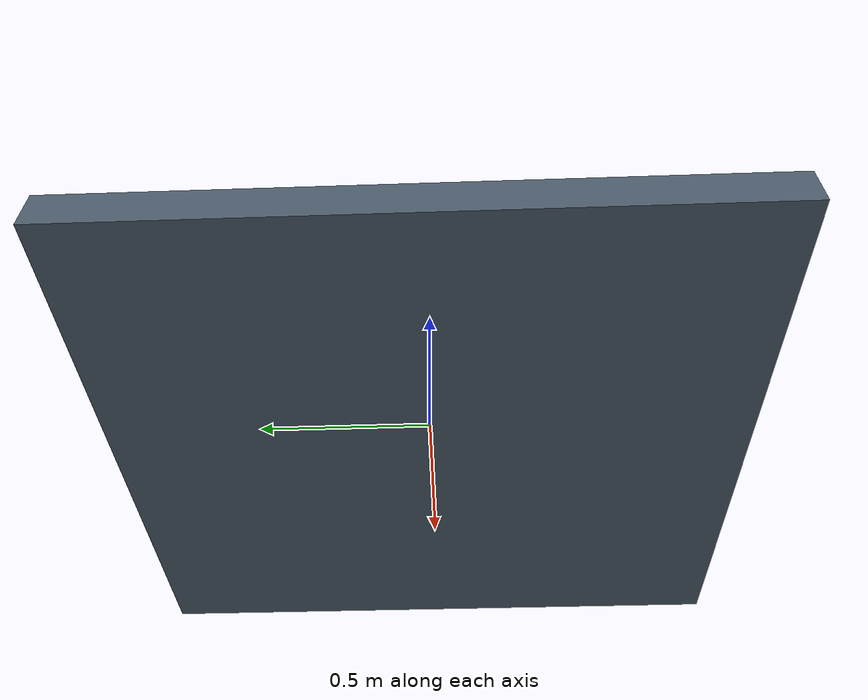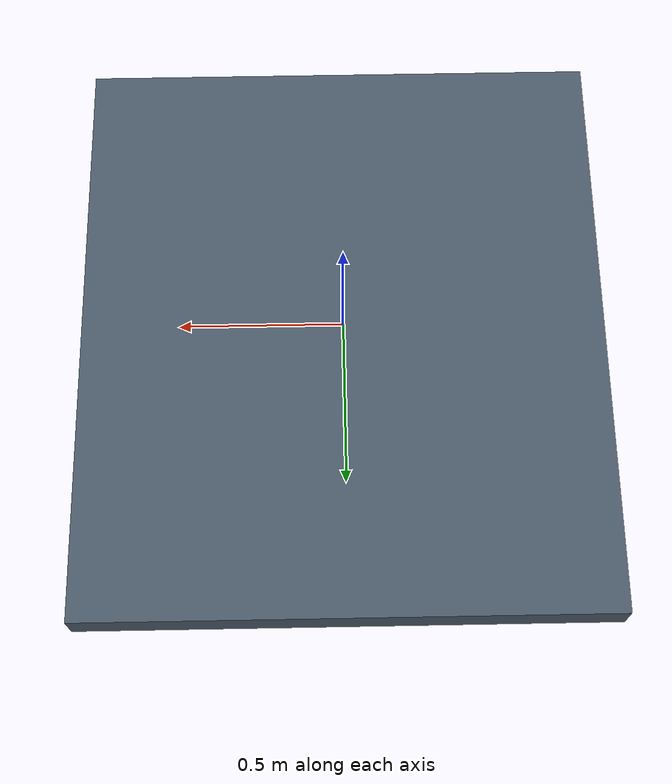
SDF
<?xml version="1.0"?>
<sdf version="1.6">
  <model name="helmet_worker_platform">
    <static>true</static>
    <link name="link">
      <collision name="platform_collision">
        <pose>0 0 -0.06 0 0 0</pose>
        <geometry><box><size>1.6 1.8 0.12</size></box></geometry>
      </collision>
      <visual name="platform_visual">
        <pose>0 0 -0.06 0 0 0</pose>
        <geometry><box><size>1.6 1.8 0.12</size></box></geometry>
        <material>
          <ambient>0.20 0.24 0.28 1</ambient>
          <diffuse>0.30 0.36 0.42 1</diffuse>
          <specular>0.15 0.15 0.15 1</specular>
        </material>
      </visual>
    </link>
  </model>
</sdf>
